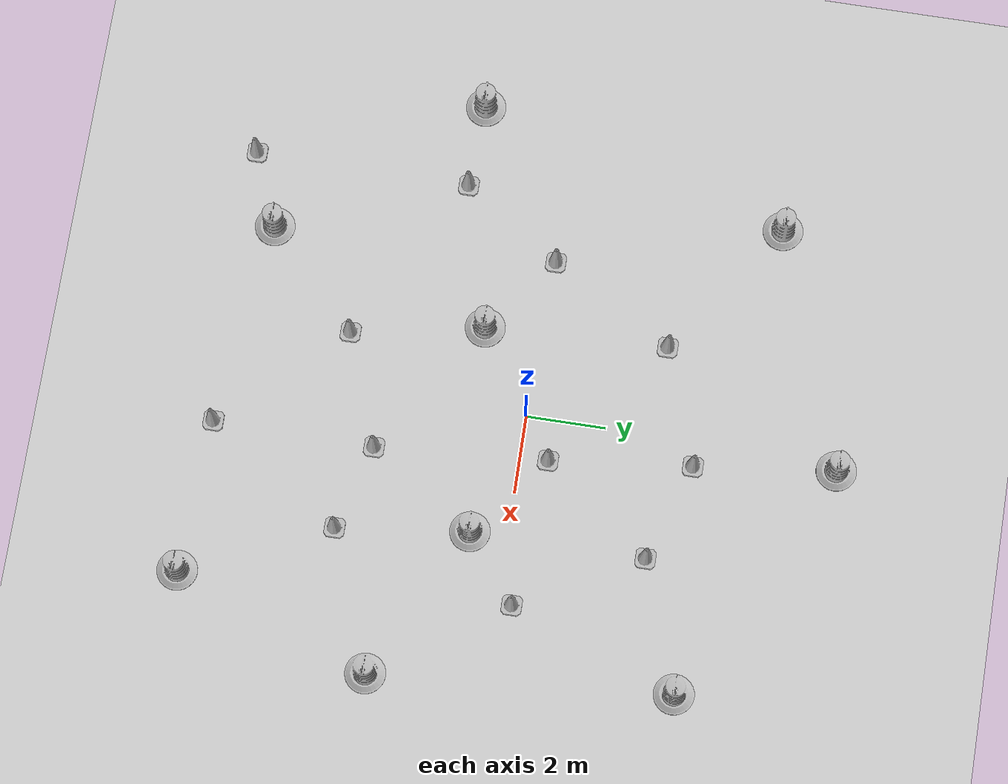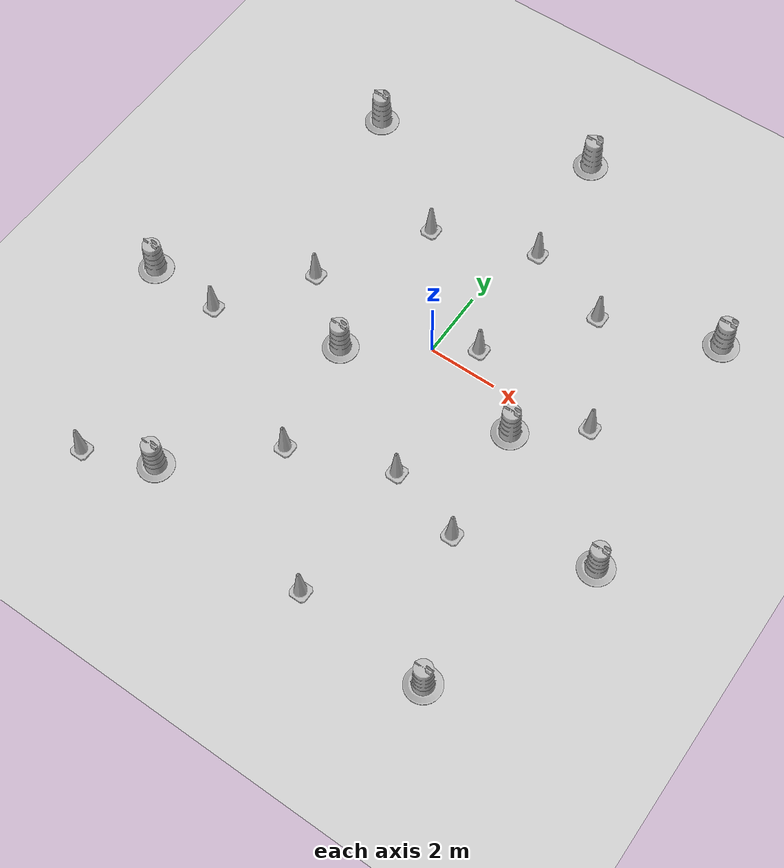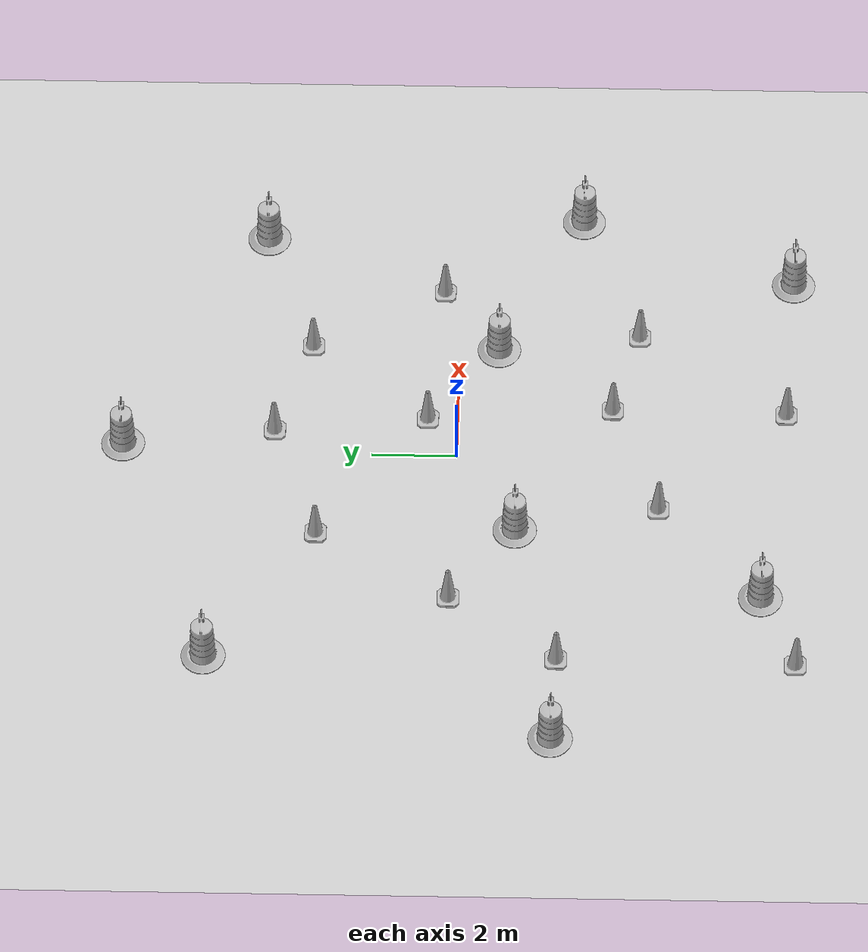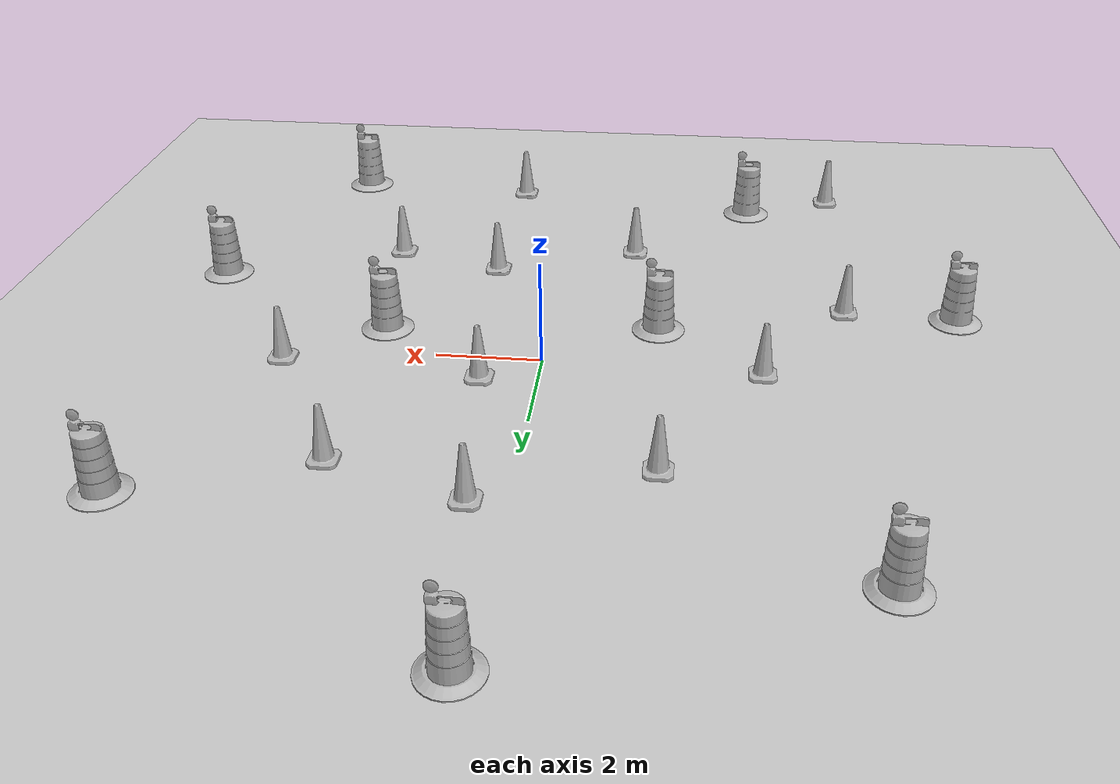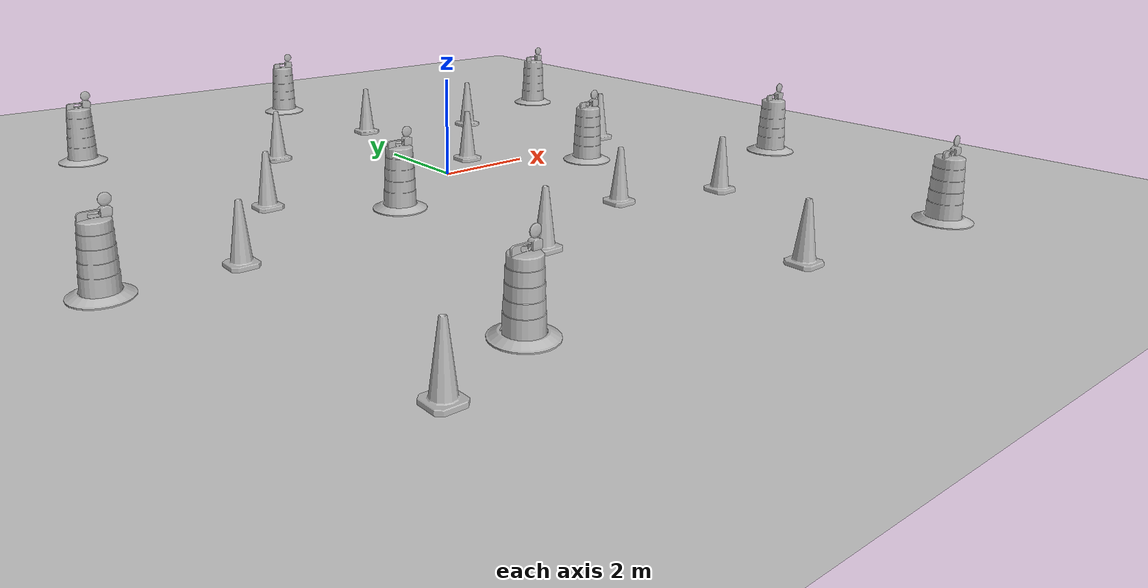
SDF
<sdf version="1.7">
 <world name="default">
  <light name="sun" type="directional">
   <pose>0 0 10 0 -0 0</pose>
   <diffuse>0.8 0.8 0.8 1</diffuse>
   <specular>0.2 0.2 0.2 1</specular>
   <attenuation>
    <range>1000</range>
    <constant>0.9</constant>
    <linear>0.01</linear>
    <quadratic>0.001</quadratic>
   </attenuation>
   <direction>-0.5 0.1 -0.9</direction>
   <spot><inner_angle>0</inner_angle><outer_angle>0</outer_angle><falloff>0</falloff></spot>
  </light>
  <model name="ground_plane">
   <static>1</static>
   <link name="link">
    <collision name="collision">
     <geometry><plane><normal>0 0 1</normal><size>100 100</size></plane></geometry>
     <surface><friction><ode><mu>100</mu><mu2>50</mu2></ode></friction></surface>
    </collision>
    <visual name="visual">
     <cast_shadows>0</cast_shadows>
     <geometry><plane><normal>0 0 1</normal><size>100 100</size></plane></geometry>
     <material>
      <script><uri>file://media/materials/scripts/gazebo.material</uri><name>Gazebo/Grey</name></script>
     </material>
    </visual>
   </link>
  </model>
  <gravity>0 0 -9.8</gravity>
  <magnetic_field>6e-06 2.3e-05 -4.2e-05</magnetic_field>
  <atmosphere type="adiabatic"/>
  <physics type="ode">
   <max_step_size>0.001</max_step_size>
   <real_time_factor>1</real_time_factor>
   <real_time_update_rate>1000</real_time_update_rate>
  </physics>
  <scene><ambient>0.4 0.4 0.4 1</ambient><background>0.7 0.7 0.7 1</background><shadows>1</shadows></scene>
  <audio><device>default</device></audio>
  <spherical_coordinates>
   <surface_model>EARTH_WGS84</surface_model>
   <latitude_deg>0</latitude_deg>
   <longitude_deg>0</longitude_deg>
   <elevation>0</elevation>
   <heading_deg>0</heading_deg>
  </spherical_coordinates>
  <model name="Construction Cone">
   <link name="link">
    <collision name="collision">
     <geometry>
      <mesh><scale>10 10 10</scale><uri>model://construction_cone/meshes/construction_cone.dae</uri></mesh>
     </geometry>
    </collision>
    <visual name="visual">
     <geometry>
      <mesh><scale>10 10 10</scale><uri>model://construction_cone/meshes/construction_cone.dae</uri></mesh>
     </geometry>
    </visual>
    <inertial>
     <inertia><ixx>1</ixx><ixy>0</ixy><ixz>0</ixz><iyy>1</iyy><iyz>0</iyz><izz>1</izz></inertia>
     <mass>1</mass>
    </inertial>
   </link>
   <pose>1.06213 0.707203 -0 0 -0 0</pose>
  </model>
  <model name="Construction Cone_0">
   <link name="link">
    <collision name="collision">
     <geometry>
      <mesh><scale>10 10 10</scale><uri>model://construction_cone/meshes/construction_cone.dae</uri></mesh>
     </geometry>
    </collision>
    <visual name="visual">
     <geometry>
      <mesh><scale>10 10 10</scale><uri>model://construction_cone/meshes/construction_cone.dae</uri></mesh>
     </geometry>
    </visual>
    <inertial>
     <inertia><ixx>1</ixx><ixy>0</ixy><ixz>0</ixz><iyy>1</iyy><iyz>0</iyz><izz>1</izz></inertia>
     <mass>1</mass>
    </inertial>
   </link>
   <pose>1.37892 -3.6283 -0 0 -1e-06 0</pose>
  </model>
  <model name="Construction Barrel">
   <link name="link">
    <inertial>
     <pose>0 0 0.4 0 -0 0</pose>
     <mass>500</mass>
     <inertia><ixx>51.2096</ixx><iyy>51.2096</iyy><izz>25</izz><ixy>0</ixy><ixz>0</ixz><iyz>0</iyz></inertia>
    </inertial>
    <collision name="collision">
     <geometry><mesh><uri>model://construction_barrel/meshes/construction_barrel.dae</uri></mesh></geometry>
    </collision>
    <visual name="visual">
     <geometry><mesh><uri>model://construction_barrel/meshes/construction_barrel.dae</uri></mesh></geometry>
    </visual>
   </link>
   <pose>3.14071 -0.935982 1e-06 3e-06 2e-06 -2.8e-05</pose>
  </model>
  <model name="Construction Barrel_0">
   <link name="link">
    <inertial>
     <pose>0 0 0.4 0 -0 0</pose>
     <mass>500</mass>
     <inertia><ixx>51.2096</ixx><iyy>51.2096</iyy><izz>25</izz><ixy>0</ixy><ixz>0</ixz><iyz>0</iyz></inertia>
    </inertial>
    <collision name="collision">
     <geometry><mesh><uri>model://construction_barrel/meshes/construction_barrel.dae</uri></mesh></geometry>
    </collision>
    <visual name="visual">
     <geometry><mesh><uri>model://construction_barrel/meshes/construction_barrel.dae</uri></mesh></geometry>
    </visual>
   </link>
   <pose>-2.10539 -1.37154 1e-06 3e-06 2e-06 -2.7e-05</pose>
  </model>
  <model name="Construction Cone_1">
   <link name="link">
    <collision name="collision">
     <geometry>
      <mesh><scale>10 10 10</scale><uri>model://construction_cone/meshes/construction_cone.dae</uri></mesh>
     </geometry>
    </collision>
    <visual name="visual">
     <geometry>
      <mesh><scale>10 10 10</scale><uri>model://construction_cone/meshes/construction_cone.dae</uri></mesh>
     </geometry>
    </visual>
    <inertial>
     <inertia><ixx>1</ixx><ixy>0</ixy><ixz>0</ixz><iyy>1</iyy><iyz>0</iyz><izz>1</izz></inertia>
     <mass>1</mass>
    </inertial>
   </link>
   <pose>3.16059 3.45893 -0 0 -0 0</pose>
  </model>
  <model name="Construction Cone_2">
   <link name="link">
    <collision name="collision">
     <geometry>
      <mesh><scale>10 10 10</scale><uri>model://construction_cone/meshes/construction_cone.dae</uri></mesh>
     </geometry>
    </collision>
    <visual name="visual">
     <geometry>
      <mesh><scale>10 10 10</scale><uri>model://construction_cone/meshes/construction_cone.dae</uri></mesh>
     </geometry>
    </visual>
    <inertial>
     <inertia><ixx>1</ixx><ixy>0</ixy><ixz>0</ixz><iyy>1</iyy><iyz>0</iyz><izz>1</izz></inertia>
     <mass>1</mass>
    </inertial>
   </link>
   <pose>0.666183 4.29033 -3e-06 -3e-06 -1e-06 -0</pose>
  </model>
  <model name="Construction Cone_3">
   <link name="link">
    <collision name="collision">
     <geometry>
      <mesh><scale>10 10 10</scale><uri>model://construction_cone/meshes/construction_cone.dae</uri></mesh>
     </geometry>
    </collision>
    <visual name="visual">
     <geometry>
      <mesh><scale>10 10 10</scale><uri>model://construction_cone/meshes/construction_cone.dae</uri></mesh>
     </geometry>
    </visual>
    <inertial>
     <inertia><ixx>1</ixx><ixy>0</ixy><ixz>0</ixz><iyy>1</iyy><iyz>0</iyz><izz>1</izz></inertia>
     <mass>1</mass>
    </inertial>
   </link>
   <pose>-2.28353 3.24118 -0 0 -0 0</pose>
  </model>
  <model name="Construction Cone_4">
   <link name="link">
    <collision name="collision">
     <geometry>
      <mesh><scale>10 10 10</scale><uri>model://construction_cone/meshes/construction_cone.dae</uri></mesh>
     </geometry>
    </collision>
    <visual name="visual">
     <geometry>
      <mesh><scale>10 10 10</scale><uri>model://construction_cone/meshes/construction_cone.dae</uri></mesh>
     </geometry>
    </visual>
    <inertial>
     <inertia><ixx>1</ixx><ixy>0</ixy><ixz>0</ixz><iyy>1</iyy><iyz>0</iyz><izz>1</izz></inertia>
     <mass>1</mass>
    </inertial>
   </link>
   <pose>4.82349 0.370592 -0 0 -0 0</pose>
  </model>
  <model name="Construction Cone_5">
   <link name="link">
    <collision name="collision">
     <geometry>
      <mesh><scale>10 10 10</scale><uri>model://construction_cone/meshes/construction_cone.dae</uri></mesh>
     </geometry>
    </collision>
    <visual name="visual">
     <geometry>
      <mesh><scale>10 10 10</scale><uri>model://construction_cone/meshes/construction_cone.dae</uri></mesh>
     </geometry>
    </visual>
    <inertial>
     <inertia><ixx>1</ixx><ixy>0</ixy><ixz>0</ixz><iyy>1</iyy><iyz>0</iyz><izz>1</izz></inertia>
     <mass>1</mass>
    </inertial>
   </link>
   <pose>-4.0652 0.133059 -1e-06 2e-06 2e-06 0</pose>
  </model>
  <model name="Construction Cone_6">
   <link name="link">
    <collision name="collision">
     <geometry>
      <mesh><scale>10 10 10</scale><uri>model://construction_cone/meshes/construction_cone.dae</uri></mesh>
     </geometry>
    </collision>
    <visual name="visual">
     <geometry>
      <mesh><scale>10 10 10</scale><uri>model://construction_cone/meshes/construction_cone.dae</uri></mesh>
     </geometry>
    </visual>
    <inertial>
     <inertia><ixx>1</ixx><ixy>0</ixy><ixz>0</ixz><iyy>1</iyy><iyz>0</iyz><izz>1</izz></inertia>
     <mass>1</mass>
    </inertial>
   </link>
   <pose>-1.47185 -4.69737 -6e-06 -4e-06 0 0</pose>
  </model>
  <model name="Construction Cone_7">
   <link name="link">
    <collision name="collision">
     <geometry>
      <mesh><scale>10 10 10</scale><uri>model://construction_cone/meshes/construction_cone.dae</uri></mesh>
     </geometry>
    </collision>
    <visual name="visual">
     <geometry>
      <mesh><scale>10 10 10</scale><uri>model://construction_cone/meshes/construction_cone.dae</uri></mesh>
     </geometry>
    </visual>
    <inertial>
     <inertia><ixx>1</ixx><ixy>0</ixy><ixz>0</ixz><iyy>1</iyy><iyz>0</iyz><izz>1</izz></inertia>
     <mass>1</mass>
    </inertial>
   </link>
   <pose>3.5565 -4.26181 -0 0 -0 0</pose>
  </model>
  <model name="Construction Cone_8">
   <link name="link">
    <collision name="collision">
     <geometry>
      <mesh><scale>10 10 10</scale><uri>model://construction_cone/meshes/construction_cone.dae</uri></mesh>
     </geometry>
    </collision>
    <visual name="visual">
     <geometry>
      <mesh><scale>10 10 10</scale><uri>model://construction_cone/meshes/construction_cone.dae</uri></mesh>
     </geometry>
    </visual>
    <inertial>
     <inertia><ixx>1</ixx><ixy>0</ixy><ixz>0</ixz><iyy>1</iyy><iyz>0</iyz><izz>1</izz></inertia>
     <mass>1</mass>
    </inertial>
   </link>
   <pose>1.31948 -7.70642 -1e-05 0 -0 0</pose>
  </model>
  <model name="Construction Cone_9">
   <link name="link">
    <collision name="collision">
     <geometry>
      <mesh><scale>10 10 10</scale><uri>model://construction_cone/meshes/construction_cone.dae</uri></mesh>
     </geometry>
    </collision>
    <visual name="visual">
     <geometry>
      <mesh><scale>10 10 10</scale><uri>model://construction_cone/meshes/construction_cone.dae</uri></mesh>
     </geometry>
    </visual>
    <inertial>
     <inertia><ixx>1</ixx><ixy>0</ixy><ixz>0</ixz><iyy>1</iyy><iyz>0</iyz><izz>1</izz></inertia>
     <mass>1</mass>
    </inertial>
   </link>
   <pose>-5.80729 -7.82515 -6e-06 -4e-06 1e-06 0</pose>
  </model>
  <model name="Construction Cone_10">
   <link name="link">
    <collision name="collision">
     <geometry>
      <mesh><scale>10 10 10</scale><uri>model://construction_cone/meshes/construction_cone.dae</uri></mesh>
     </geometry>
    </collision>
    <visual name="visual">
     <geometry>
      <mesh><scale>10 10 10</scale><uri>model://construction_cone/meshes/construction_cone.dae</uri></mesh>
     </geometry>
    </visual>
    <inertial>
     <inertia><ixx>1</ixx><ixy>0</ixy><ixz>0</ixz><iyy>1</iyy><iyz>0</iyz><izz>1</izz></inertia>
     <mass>1</mass>
    </inertial>
   </link>
   <pose>-5.74792 -2.36134 -0 0 -0 0</pose>
  </model>
  <model name="Construction Barrel_1">
   <link name="link">
    <inertial>
     <pose>0 0 0.4 0 -0 0</pose>
     <mass>500</mass>
     <inertia><ixx>51.2096</ixx><iyy>51.2096</iyy><izz>25</izz><ixy>0</ixy><ixz>0</ixz><iyz>0</iyz></inertia>
    </inertial>
    <collision name="collision">
     <geometry><mesh><uri>model://construction_barrel/meshes/construction_barrel.dae</uri></mesh></geometry>
    </collision>
    <visual name="visual">
     <geometry><mesh><uri>model://construction_barrel/meshes/construction_barrel.dae</uri></mesh></geometry>
    </visual>
   </link>
   <pose>-5.76779 5.69592 -0 1e-06 -1e-06 -1.2e-05</pose>
  </model>
  <model name="Construction Barrel_2">
   <link name="link">
    <inertial>
     <pose>0 0 0.4 0 -0 0</pose>
     <mass>500</mass>
     <inertia><ixx>51.2096</ixx><iyy>51.2096</iyy><izz>25</izz><ixy>0</ixy><ixz>0</ixz><iyz>0</iyz></inertia>
    </inertial>
    <collision name="collision">
     <geometry><mesh><uri>model://construction_barrel/meshes/construction_barrel.dae</uri></mesh></geometry>
    </collision>
    <visual name="visual">
     <geometry><mesh><uri>model://construction_barrel/meshes/construction_barrel.dae</uri></mesh></geometry>
    </visual>
   </link>
   <pose>0.230659 7.83393 -1e-06 0 5e-06 -1e-05</pose>
  </model>
  <model name="Construction Barrel_3">
   <link name="link">
    <inertial>
     <pose>0 0 0.4 0 -0 0</pose>
     <mass>500</mass>
     <inertia><ixx>51.2096</ixx><iyy>51.2096</iyy><izz>25</izz><ixy>0</ixy><ixz>0</ixz><iyz>0</iyz></inertia>
    </inertial>
    <collision name="collision">
     <geometry><mesh><uri>model://construction_barrel/meshes/construction_barrel.dae</uri></mesh></geometry>
    </collision>
    <visual name="visual">
     <geometry><mesh><uri>model://construction_barrel/meshes/construction_barrel.dae</uri></mesh></geometry>
    </visual>
   </link>
   <pose>6.40724 4.62693 -2e-06 -0 7e-06 -8e-06</pose>
  </model>
  <model name="Construction Barrel_4">
   <link name="link">
    <inertial>
     <pose>0 0 0.4 0 -0 0</pose>
     <mass>500</mass>
     <inertia><ixx>51.2096</ixx><iyy>51.2096</iyy><izz>25</izz><ixy>0</ixy><ixz>0</ixz><iyz>0</iyz></inertia>
    </inertial>
    <collision name="collision">
     <geometry><mesh><uri>model://construction_barrel/meshes/construction_barrel.dae</uri></mesh></geometry>
    </collision>
    <visual name="visual">
     <geometry><mesh><uri>model://construction_barrel/meshes/construction_barrel.dae</uri></mesh></geometry>
    </visual>
   </link>
   <pose>7.04493 -2.91948 -1e-06 3e-06 1e-05 -7e-06</pose>
  </model>
  <model name="Construction Barrel_5">
   <link name="link">
    <inertial>
     <pose>0 0 0.4 0 -0 0</pose>
     <mass>500</mass>
     <inertia><ixx>51.2096</ixx><iyy>51.2096</iyy><izz>25</izz><ixy>0</ixy><ixz>0</ixz><iyz>0</iyz></inertia>
    </inertial>
    <collision name="collision">
     <geometry><mesh><uri>model://construction_barrel/meshes/construction_barrel.dae</uri></mesh></geometry>
    </collision>
    <visual name="visual">
     <geometry><mesh><uri>model://construction_barrel/meshes/construction_barrel.dae</uri></mesh></geometry>
    </visual>
   </link>
   <pose>5.20689 -7.92769 1e-06 2e-06 3e-06 -6e-06</pose>
  </model>
  <model name="Construction Barrel_6">
   <link name="link">
    <inertial>
     <pose>0 0 0.4 0 -0 0</pose>
     <mass>500</mass>
     <inertia><ixx>51.2096</ixx><iyy>51.2096</iyy><izz>25</izz><ixy>0</ixy><ixz>0</ixz><iyz>0</iyz></inertia>
    </inertial>
    <collision name="collision">
     <geometry><mesh><uri>model://construction_barrel/meshes/construction_barrel.dae</uri></mesh></geometry>
    </collision>
    <visual name="visual">
     <geometry><mesh><uri>model://construction_barrel/meshes/construction_barrel.dae</uri></mesh></geometry>
    </visual>
   </link>
   <pose>-3.92999 -7.04851 0 0 0 -3e-06</pose>
  </model>
  <model name="Construction Barrel_7">
   <link name="link">
    <inertial>
     <pose>0 0 0.4 0 -0 0</pose>
     <mass>500</mass>
     <inertia><ixx>51.2096</ixx><iyy>51.2096</iyy><izz>25</izz><ixy>0</ixy><ixz>0</ixz><iyz>0</iyz></inertia>
    </inertial>
    <collision name="collision">
     <geometry><mesh><uri>model://construction_barrel/meshes/construction_barrel.dae</uri></mesh></geometry>
    </collision>
    <visual name="visual">
     <geometry><mesh><uri>model://construction_barrel/meshes/construction_barrel.dae</uri></mesh></geometry>
    </visual>
   </link>
   <pose>-7.89917 -2.2535 -1e-06 3e-06 -2e-06 -2e-06</pose>
  </model>
 </world>
</sdf>
